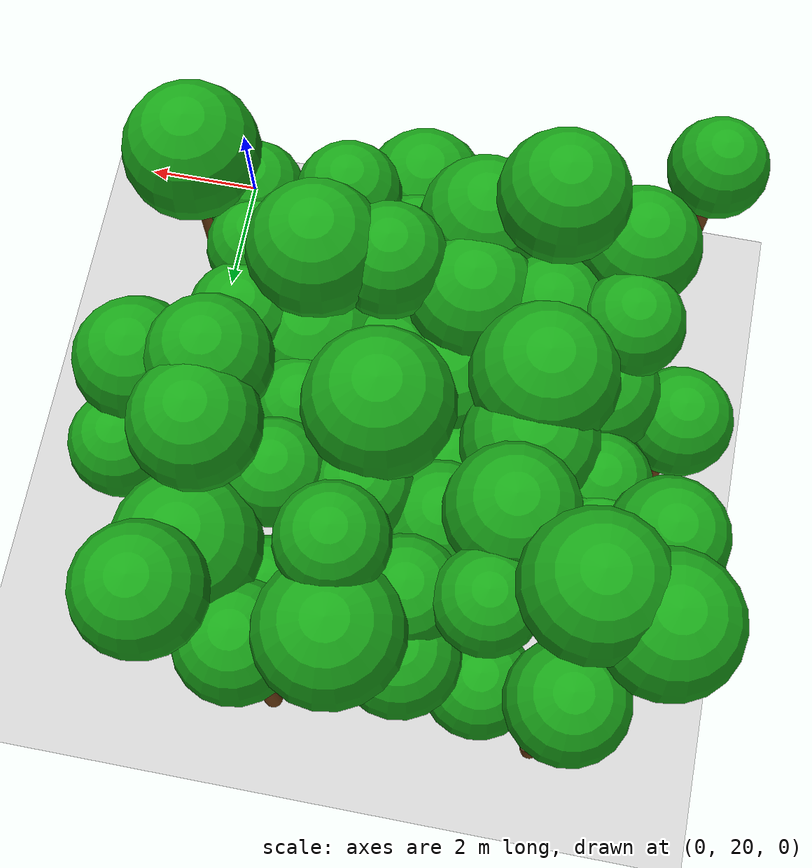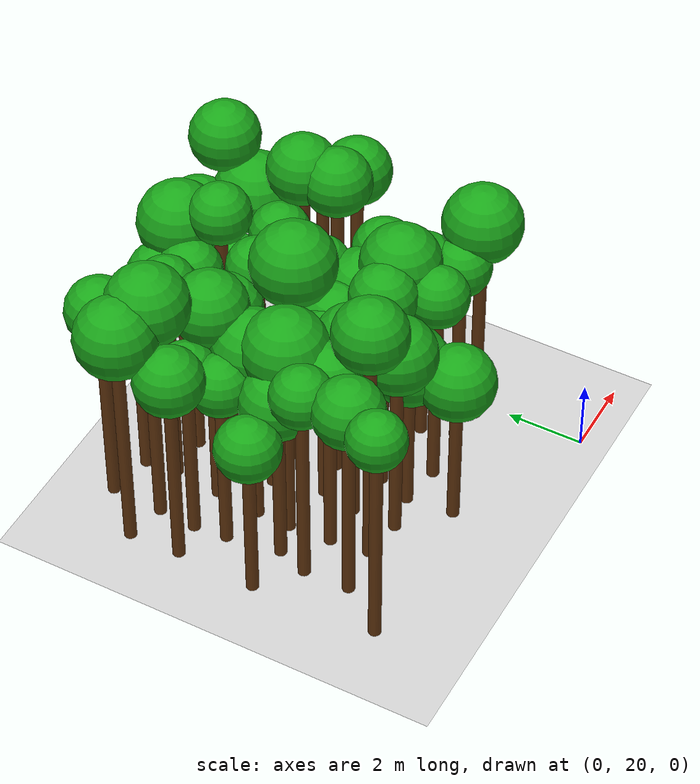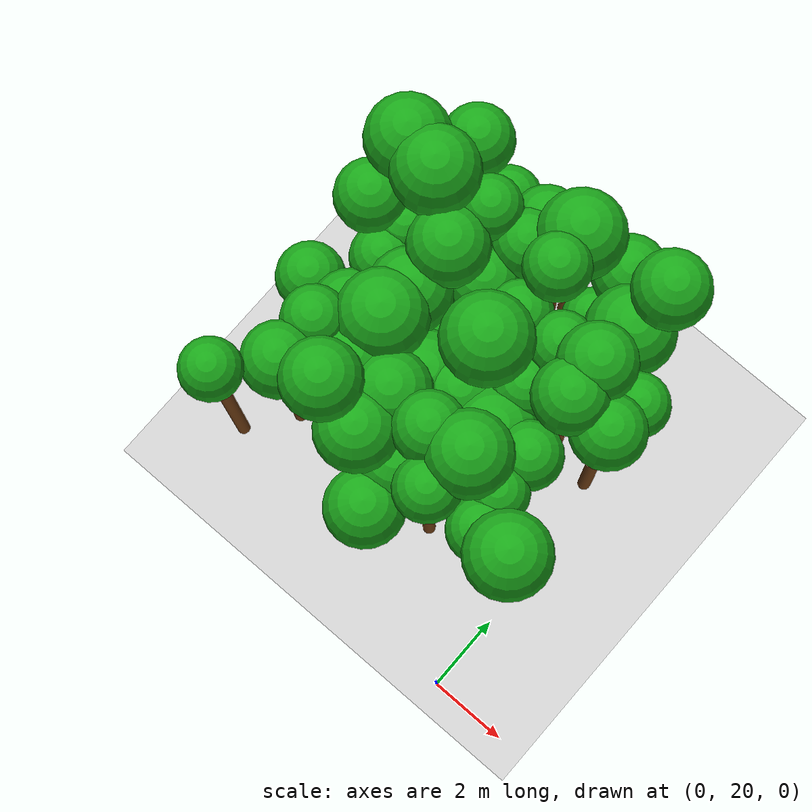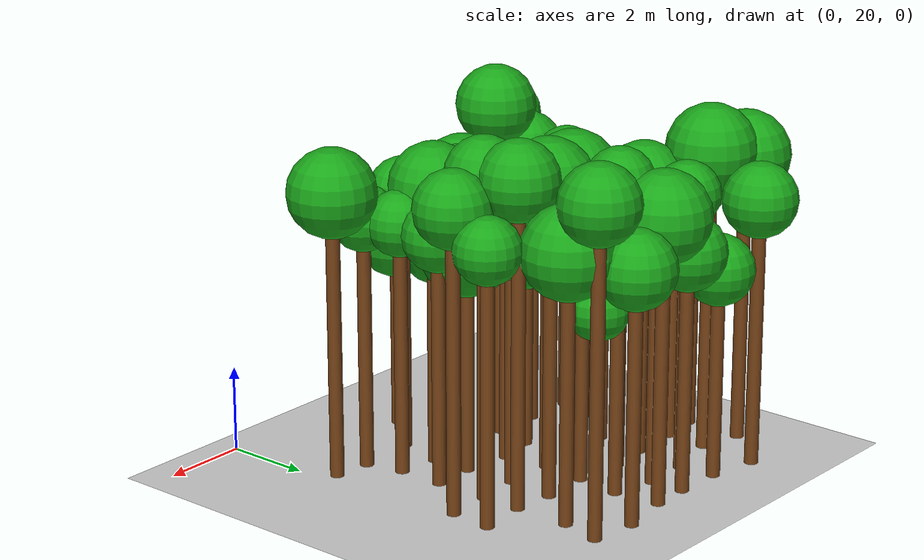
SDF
<sdf version="1.6">
 <world name="forest_world">
  <include><uri>model://sun</uri></include>
  <include><uri>model://ground_plane</uri></include>
  <model name="tree_1147_trunk">
   <static>true</static>
   <pose>-7.85 21.68 3.12 0 0 0</pose>
   <link name="link">
    <collision name="collision">
     <geometry><cylinder><radius>0.16</radius><length>6.24</length></cylinder></geometry>
    </collision>
    <visual name="visual">
     <geometry><cylinder><radius>0.16</radius><length>6.24</length></cylinder></geometry>
     <material><ambient>0.35 0.20 0.05 1</ambient><diffuse>0.45 0.25 0.08 1</diffuse></material>
    </visual>
   </link>
  </model>
  <model name="tree_1147_leaf">
   <static>true</static>
   <pose>-7.85 21.68 6.68 0 0 0</pose>
   <link name="link">
    <collision name="collision"><geometry><sphere><radius>0.73</radius></sphere></geometry></collision>
    <visual name="visual">
     <geometry><sphere><radius>0.73</radius></sphere></geometry>
     <material><ambient>0.05 0.45 0.05 1</ambient><diffuse>0.10 0.65 0.10 1</diffuse></material>
    </visual>
   </link>
  </model>
  <model name="tree_1150_trunk">
   <static>true</static>
   <pose>-8.02 24.93 2.19 0 0 0</pose>
   <link name="link">
    <collision name="collision">
     <geometry><cylinder><radius>0.16</radius><length>4.38</length></cylinder></geometry>
    </collision>
    <visual name="visual">
     <geometry><cylinder><radius>0.16</radius><length>4.38</length></cylinder></geometry>
     <material><ambient>0.35 0.20 0.05 1</ambient><diffuse>0.45 0.25 0.08 1</diffuse></material>
    </visual>
   </link>
  </model>
  <model name="tree_1150_leaf">
   <static>true</static>
   <pose>-8.02 24.93 4.88 0 0 0</pose>
   <link name="link">
    <collision name="collision"><geometry><sphere><radius>0.82</radius></sphere></geometry></collision>
    <visual name="visual">
     <geometry><sphere><radius>0.82</radius></sphere></geometry>
     <material><ambient>0.05 0.45 0.05 1</ambient><diffuse>0.10 0.65 0.10 1</diffuse></material>
    </visual>
   </link>
  </model>
  <model name="tree_1152_trunk">
   <static>true</static>
   <pose>-7.96 27.03 2.75 0 0 0</pose>
   <link name="link">
    <collision name="collision">
     <geometry><cylinder><radius>0.16</radius><length>5.50</length></cylinder></geometry>
    </collision>
    <visual name="visual">
     <geometry><cylinder><radius>0.16</radius><length>5.50</length></cylinder></geometry>
     <material><ambient>0.35 0.20 0.05 1</ambient><diffuse>0.45 0.25 0.08 1</diffuse></material>
    </visual>
   </link>
  </model>
  <model name="tree_1152_leaf">
   <static>true</static>
   <pose>-7.96 27.03 6.02 0 0 0</pose>
   <link name="link">
    <collision name="collision"><geometry><sphere><radius>0.87</radius></sphere></geometry></collision>
    <visual name="visual">
     <geometry><sphere><radius>0.87</radius></sphere></geometry>
     <material><ambient>0.05 0.45 0.05 1</ambient><diffuse>0.10 0.65 0.10 1</diffuse></material>
    </visual>
   </link>
  </model>
  <model name="tree_1153_trunk">
   <static>true</static>
   <pose>-8.01 28.38 3.11 0 0 0</pose>
   <link name="link">
    <collision name="collision">
     <geometry><cylinder><radius>0.16</radius><length>6.23</length></cylinder></geometry>
    </collision>
    <visual name="visual">
     <geometry><cylinder><radius>0.16</radius><length>6.23</length></cylinder></geometry>
     <material><ambient>0.35 0.20 0.05 1</ambient><diffuse>0.45 0.25 0.08 1</diffuse></material>
    </visual>
   </link>
  </model>
  <model name="tree_1153_leaf">
   <static>true</static>
   <pose>-8.01 28.38 6.84 0 0 0</pose>
   <link name="link">
    <collision name="collision"><geometry><sphere><radius>1.02</radius></sphere></geometry></collision>
    <visual name="visual">
     <geometry><sphere><radius>1.02</radius></sphere></geometry>
     <material><ambient>0.05 0.45 0.05 1</ambient><diffuse>0.10 0.65 0.10 1</diffuse></material>
    </visual>
   </link>
  </model>
  <model name="tree_1203_trunk">
   <static>true</static>
   <pose>-6.98 22.86 2.83 0 0 0</pose>
   <link name="link">
    <collision name="collision">
     <geometry><cylinder><radius>0.16</radius><length>5.65</length></cylinder></geometry>
    </collision>
    <visual name="visual">
     <geometry><cylinder><radius>0.16</radius><length>5.65</length></cylinder></geometry>
     <material><ambient>0.35 0.20 0.05 1</ambient><diffuse>0.45 0.25 0.08 1</diffuse></material>
    </visual>
   </link>
  </model>
  <model name="tree_1203_leaf">
   <static>true</static>
   <pose>-6.98 22.86 6.18 0 0 0</pose>
   <link name="link">
    <collision name="collision"><geometry><sphere><radius>0.89</radius></sphere></geometry></collision>
    <visual name="visual">
     <geometry><sphere><radius>0.89</radius></sphere></geometry>
     <material><ambient>0.05 0.45 0.05 1</ambient><diffuse>0.10 0.65 0.10 1</diffuse></material>
    </visual>
   </link>
  </model>
  <model name="tree_1204_trunk">
   <static>true</static>
   <pose>-7.02 24.06 2.83 0 0 0</pose>
   <link name="link">
    <collision name="collision">
     <geometry><cylinder><radius>0.16</radius><length>5.67</length></cylinder></geometry>
    </collision>
    <visual name="visual">
     <geometry><cylinder><radius>0.16</radius><length>5.67</length></cylinder></geometry>
     <material><ambient>0.35 0.20 0.05 1</ambient><diffuse>0.45 0.25 0.08 1</diffuse></material>
    </visual>
   </link>
  </model>
  <model name="tree_1204_leaf">
   <static>true</static>
   <pose>-7.02 24.06 6.13 0 0 0</pose>
   <link name="link">
    <collision name="collision"><geometry><sphere><radius>0.78</radius></sphere></geometry></collision>
    <visual name="visual">
     <geometry><sphere><radius>0.78</radius></sphere></geometry>
     <material><ambient>0.05 0.45 0.05 1</ambient><diffuse>0.10 0.65 0.10 1</diffuse></material>
    </visual>
   </link>
  </model>
  <model name="tree_1205_trunk">
   <static>true</static>
   <pose>-6.74 24.87 2.36 0 0 0</pose>
   <link name="link">
    <collision name="collision">
     <geometry><cylinder><radius>0.16</radius><length>4.73</length></cylinder></geometry>
    </collision>
    <visual name="visual">
     <geometry><cylinder><radius>0.16</radius><length>4.73</length></cylinder></geometry>
     <material><ambient>0.35 0.20 0.05 1</ambient><diffuse>0.45 0.25 0.08 1</diffuse></material>
    </visual>
   </link>
  </model>
  <model name="tree_1205_leaf">
   <static>true</static>
   <pose>-6.74 24.87 5.29 0 0 0</pose>
   <link name="link">
    <collision name="collision"><geometry><sphere><radius>0.94</radius></sphere></geometry></collision>
    <visual name="visual">
     <geometry><sphere><radius>0.94</radius></sphere></geometry>
     <material><ambient>0.05 0.45 0.05 1</ambient><diffuse>0.10 0.65 0.10 1</diffuse></material>
    </visual>
   </link>
  </model>
  <model name="tree_1206_trunk">
   <static>true</static>
   <pose>-6.97 26.26 2.45 0 0 0</pose>
   <link name="link">
    <collision name="collision">
     <geometry><cylinder><radius>0.16</radius><length>4.90</length></cylinder></geometry>
    </collision>
    <visual name="visual">
     <geometry><cylinder><radius>0.16</radius><length>4.90</length></cylinder></geometry>
     <material><ambient>0.35 0.20 0.05 1</ambient><diffuse>0.45 0.25 0.08 1</diffuse></material>
    </visual>
   </link>
  </model>
  <model name="tree_1206_leaf">
   <static>true</static>
   <pose>-6.97 26.26 5.37 0 0 0</pose>
   <link name="link">
    <collision name="collision"><geometry><sphere><radius>0.78</radius></sphere></geometry></collision>
    <visual name="visual">
     <geometry><sphere><radius>0.78</radius></sphere></geometry>
     <material><ambient>0.05 0.45 0.05 1</ambient><diffuse>0.10 0.65 0.10 1</diffuse></material>
    </visual>
   </link>
  </model>
  <model name="tree_1207_trunk">
   <static>true</static>
   <pose>-7.05 27.13 2.48 0 0 0</pose>
   <link name="link">
    <collision name="collision">
     <geometry><cylinder><radius>0.16</radius><length>4.97</length></cylinder></geometry>
    </collision>
    <visual name="visual">
     <geometry><cylinder><radius>0.16</radius><length>4.97</length></cylinder></geometry>
     <material><ambient>0.35 0.20 0.05 1</ambient><diffuse>0.45 0.25 0.08 1</diffuse></material>
    </visual>
   </link>
  </model>
  <model name="tree_1207_leaf">
   <static>true</static>
   <pose>-7.05 27.13 5.44 0 0 0</pose>
   <link name="link">
    <collision name="collision"><geometry><sphere><radius>0.78</radius></sphere></geometry></collision>
    <visual name="visual">
     <geometry><sphere><radius>0.78</radius></sphere></geometry>
     <material><ambient>0.05 0.45 0.05 1</ambient><diffuse>0.10 0.65 0.10 1</diffuse></material>
    </visual>
   </link>
  </model>
  <model name="tree_1208_trunk">
   <static>true</static>
   <pose>-7.00 28.13 3.26 0 0 0</pose>
   <link name="link">
    <collision name="collision">
     <geometry><cylinder><radius>0.16</radius><length>6.51</length></cylinder></geometry>
    </collision>
    <visual name="visual">
     <geometry><cylinder><radius>0.16</radius><length>6.51</length></cylinder></geometry>
     <material><ambient>0.35 0.20 0.05 1</ambient><diffuse>0.45 0.25 0.08 1</diffuse></material>
    </visual>
   </link>
  </model>
  <model name="tree_1208_leaf">
   <static>true</static>
   <pose>-7.00 28.13 7.14 0 0 0</pose>
   <link name="link">
    <collision name="collision"><geometry><sphere><radius>1.04</radius></sphere></geometry></collision>
    <visual name="visual">
     <geometry><sphere><radius>1.04</radius></sphere></geometry>
     <material><ambient>0.05 0.45 0.05 1</ambient><diffuse>0.10 0.65 0.10 1</diffuse></material>
    </visual>
   </link>
  </model>
  <model name="tree_1209_trunk">
   <static>true</static>
   <pose>-6.94 29.51 2.87 0 0 0</pose>
   <link name="link">
    <collision name="collision">
     <geometry><cylinder><radius>0.16</radius><length>5.74</length></cylinder></geometry>
    </collision>
    <visual name="visual">
     <geometry><cylinder><radius>0.16</radius><length>5.74</length></cylinder></geometry>
     <material><ambient>0.35 0.20 0.05 1</ambient><diffuse>0.45 0.25 0.08 1</diffuse></material>
    </visual>
   </link>
  </model>
  <model name="tree_1209_leaf">
   <static>true</static>
   <pose>-6.94 29.51 6.25 0 0 0</pose>
   <link name="link">
    <collision name="collision"><geometry><sphere><radius>0.86</radius></sphere></geometry></collision>
    <visual name="visual">
     <geometry><sphere><radius>0.86</radius></sphere></geometry>
     <material><ambient>0.05 0.45 0.05 1</ambient><diffuse>0.10 0.65 0.10 1</diffuse></material>
    </visual>
   </link>
  </model>
  <model name="tree_1258_trunk">
   <static>true</static>
   <pose>-5.74 22.97 3.48 0 0 0</pose>
   <link name="link">
    <collision name="collision">
     <geometry><cylinder><radius>0.16</radius><length>6.96</length></cylinder></geometry>
    </collision>
    <visual name="visual">
     <geometry><cylinder><radius>0.16</radius><length>6.96</length></cylinder></geometry>
     <material><ambient>0.35 0.20 0.05 1</ambient><diffuse>0.45 0.25 0.08 1</diffuse></material>
    </visual>
   </link>
  </model>
  <model name="tree_1258_leaf">
   <static>true</static>
   <pose>-5.74 22.97 7.52 0 0 0</pose>
   <link name="link">
    <collision name="collision"><geometry><sphere><radius>0.93</radius></sphere></geometry></collision>
    <visual name="visual">
     <geometry><sphere><radius>0.93</radius></sphere></geometry>
     <material><ambient>0.05 0.45 0.05 1</ambient><diffuse>0.10 0.65 0.10 1</diffuse></material>
    </visual>
   </link>
  </model>
  <model name="tree_1259_trunk">
   <static>true</static>
   <pose>-5.85 23.98 2.59 0 0 0</pose>
   <link name="link">
    <collision name="collision">
     <geometry><cylinder><radius>0.16</radius><length>5.19</length></cylinder></geometry>
    </collision>
    <visual name="visual">
     <geometry><cylinder><radius>0.16</radius><length>5.19</length></cylinder></geometry>
     <material><ambient>0.35 0.20 0.05 1</ambient><diffuse>0.45 0.25 0.08 1</diffuse></material>
    </visual>
   </link>
  </model>
  <model name="tree_1259_leaf">
   <static>true</static>
   <pose>-5.85 23.98 5.74 0 0 0</pose>
   <link name="link">
    <collision name="collision"><geometry><sphere><radius>0.92</radius></sphere></geometry></collision>
    <visual name="visual">
     <geometry><sphere><radius>0.92</radius></sphere></geometry>
     <material><ambient>0.05 0.45 0.05 1</ambient><diffuse>0.10 0.65 0.10 1</diffuse></material>
    </visual>
   </link>
  </model>
  <model name="tree_1260_trunk">
   <static>true</static>
   <pose>-5.93 25.09 2.76 0 0 0</pose>
   <link name="link">
    <collision name="collision">
     <geometry><cylinder><radius>0.16</radius><length>5.53</length></cylinder></geometry>
    </collision>
    <visual name="visual">
     <geometry><cylinder><radius>0.16</radius><length>5.53</length></cylinder></geometry>
     <material><ambient>0.35 0.20 0.05 1</ambient><diffuse>0.45 0.25 0.08 1</diffuse></material>
    </visual>
   </link>
  </model>
  <model name="tree_1260_leaf">
   <static>true</static>
   <pose>-5.93 25.09 6.18 0 0 0</pose>
   <link name="link">
    <collision name="collision"><geometry><sphere><radius>1.08</radius></sphere></geometry></collision>
    <visual name="visual">
     <geometry><sphere><radius>1.08</radius></sphere></geometry>
     <material><ambient>0.05 0.45 0.05 1</ambient><diffuse>0.10 0.65 0.10 1</diffuse></material>
    </visual>
   </link>
  </model>
  <model name="tree_1261_trunk">
   <static>true</static>
   <pose>-5.91 25.99 2.58 0 0 0</pose>
   <link name="link">
    <collision name="collision">
     <geometry><cylinder><radius>0.16</radius><length>5.17</length></cylinder></geometry>
    </collision>
    <visual name="visual">
     <geometry><cylinder><radius>0.16</radius><length>5.17</length></cylinder></geometry>
     <material><ambient>0.35 0.20 0.05 1</ambient><diffuse>0.45 0.25 0.08 1</diffuse></material>
    </visual>
   </link>
  </model>
  <model name="tree_1261_leaf">
   <static>true</static>
   <pose>-5.91 25.99 5.77 0 0 0</pose>
   <link name="link">
    <collision name="collision"><geometry><sphere><radius>1.01</radius></sphere></geometry></collision>
    <visual name="visual">
     <geometry><sphere><radius>1.01</radius></sphere></geometry>
     <material><ambient>0.05 0.45 0.05 1</ambient><diffuse>0.10 0.65 0.10 1</diffuse></material>
    </visual>
   </link>
  </model>
  <model name="tree_1262_trunk">
   <static>true</static>
   <pose>-5.81 27.18 2.94 0 0 0</pose>
   <link name="link">
    <collision name="collision">
     <geometry><cylinder><radius>0.16</radius><length>5.87</length></cylinder></geometry>
    </collision>
    <visual name="visual">
     <geometry><cylinder><radius>0.16</radius><length>5.87</length></cylinder></geometry>
     <material><ambient>0.35 0.20 0.05 1</ambient><diffuse>0.45 0.25 0.08 1</diffuse></material>
    </visual>
   </link>
  </model>
  <model name="tree_1262_leaf">
   <static>true</static>
   <pose>-5.81 27.18 6.45 0 0 0</pose>
   <link name="link">
    <collision name="collision"><geometry><sphere><radius>0.96</radius></sphere></geometry></collision>
    <visual name="visual">
     <geometry><sphere><radius>0.96</radius></sphere></geometry>
     <material><ambient>0.05 0.45 0.05 1</ambient><diffuse>0.10 0.65 0.10 1</diffuse></material>
    </visual>
   </link>
  </model>
  <model name="tree_1263_trunk">
   <static>true</static>
   <pose>-5.68 28.44 3.00 0 0 0</pose>
   <link name="link">
    <collision name="collision">
     <geometry><cylinder><radius>0.16</radius><length>6.01</length></cylinder></geometry>
    </collision>
    <visual name="visual">
     <geometry><cylinder><radius>0.16</radius><length>6.01</length></cylinder></geometry>
     <material><ambient>0.35 0.20 0.05 1</ambient><diffuse>0.45 0.25 0.08 1</diffuse></material>
    </visual>
   </link>
  </model>
  <model name="tree_1263_leaf">
   <static>true</static>
   <pose>-5.68 28.44 6.47 0 0 0</pose>
   <link name="link">
    <collision name="collision"><geometry><sphere><radius>0.76</radius></sphere></geometry></collision>
    <visual name="visual">
     <geometry><sphere><radius>0.76</radius></sphere></geometry>
     <material><ambient>0.05 0.45 0.05 1</ambient><diffuse>0.10 0.65 0.10 1</diffuse></material>
    </visual>
   </link>
  </model>
  <model name="tree_1264_trunk">
   <static>true</static>
   <pose>-5.78 29.27 2.20 0 0 0</pose>
   <link name="link">
    <collision name="collision">
     <geometry><cylinder><radius>0.16</radius><length>4.40</length></cylinder></geometry>
    </collision>
    <visual name="visual">
     <geometry><cylinder><radius>0.16</radius><length>4.40</length></cylinder></geometry>
     <material><ambient>0.35 0.20 0.05 1</ambient><diffuse>0.45 0.25 0.08 1</diffuse></material>
    </visual>
   </link>
  </model>
  <model name="tree_1264_leaf">
   <static>true</static>
   <pose>-5.78 29.27 4.88 0 0 0</pose>
   <link name="link">
    <collision name="collision"><geometry><sphere><radius>0.81</radius></sphere></geometry></collision>
    <visual name="visual">
     <geometry><sphere><radius>0.81</radius></sphere></geometry>
     <material><ambient>0.05 0.45 0.05 1</ambient><diffuse>0.10 0.65 0.10 1</diffuse></material>
    </visual>
   </link>
  </model>
  <model name="tree_1313_trunk">
   <static>true</static>
   <pose>-4.70 22.81 2.72 0 0 0</pose>
   <link name="link">
    <collision name="collision">
     <geometry><cylinder><radius>0.16</radius><length>5.43</length></cylinder></geometry>
    </collision>
    <visual name="visual">
     <geometry><cylinder><radius>0.16</radius><length>5.43</length></cylinder></geometry>
     <material><ambient>0.35 0.20 0.05 1</ambient><diffuse>0.45 0.25 0.08 1</diffuse></material>
    </visual>
   </link>
  </model>
  <model name="tree_1313_leaf">
   <static>true</static>
   <pose>-4.70 22.81 6.02 0 0 0</pose>
   <link name="link">
    <collision name="collision"><geometry><sphere><radius>0.98</radius></sphere></geometry></collision>
    <visual name="visual">
     <geometry><sphere><radius>0.98</radius></sphere></geometry>
     <material><ambient>0.05 0.45 0.05 1</ambient><diffuse>0.10 0.65 0.10 1</diffuse></material>
    </visual>
   </link>
  </model>
  <model name="tree_1314_trunk">
   <static>true</static>
   <pose>-4.72 23.96 2.66 0 0 0</pose>
   <link name="link">
    <collision name="collision">
     <geometry><cylinder><radius>0.16</radius><length>5.32</length></cylinder></geometry>
    </collision>
    <visual name="visual">
     <geometry><cylinder><radius>0.16</radius><length>5.32</length></cylinder></geometry>
     <material><ambient>0.35 0.20 0.05 1</ambient><diffuse>0.45 0.25 0.08 1</diffuse></material>
    </visual>
   </link>
  </model>
  <model name="tree_1314_leaf">
   <static>true</static>
   <pose>-4.72 23.96 5.90 0 0 0</pose>
   <link name="link">
    <collision name="collision"><geometry><sphere><radius>0.97</radius></sphere></geometry></collision>
    <visual name="visual">
     <geometry><sphere><radius>0.97</radius></sphere></geometry>
     <material><ambient>0.05 0.45 0.05 1</ambient><diffuse>0.10 0.65 0.10 1</diffuse></material>
    </visual>
   </link>
  </model>
  <model name="tree_1315_trunk">
   <static>true</static>
   <pose>-4.53 24.87 2.14 0 0 0</pose>
   <link name="link">
    <collision name="collision">
     <geometry><cylinder><radius>0.16</radius><length>4.27</length></cylinder></geometry>
    </collision>
    <visual name="visual">
     <geometry><cylinder><radius>0.16</radius><length>4.27</length></cylinder></geometry>
     <material><ambient>0.35 0.20 0.05 1</ambient><diffuse>0.45 0.25 0.08 1</diffuse></material>
    </visual>
   </link>
  </model>
  <model name="tree_1315_leaf">
   <static>true</static>
   <pose>-4.53 24.87 4.93 0 0 0</pose>
   <link name="link">
    <collision name="collision"><geometry><sphere><radius>1.09</radius></sphere></geometry></collision>
    <visual name="visual">
     <geometry><sphere><radius>1.09</radius></sphere></geometry>
     <material><ambient>0.05 0.45 0.05 1</ambient><diffuse>0.10 0.65 0.10 1</diffuse></material>
    </visual>
   </link>
  </model>
  <model name="tree_1316_trunk">
   <static>true</static>
   <pose>-4.83 26.16 2.05 0 0 0</pose>
   <link name="link">
    <collision name="collision">
     <geometry><cylinder><radius>0.16</radius><length>4.10</length></cylinder></geometry>
    </collision>
    <visual name="visual">
     <geometry><cylinder><radius>0.16</radius><length>4.10</length></cylinder></geometry>
     <material><ambient>0.35 0.20 0.05 1</ambient><diffuse>0.45 0.25 0.08 1</diffuse></material>
    </visual>
   </link>
  </model>
  <model name="tree_1316_leaf">
   <static>true</static>
   <pose>-4.83 26.16 4.60 0 0 0</pose>
   <link name="link">
    <collision name="collision"><geometry><sphere><radius>0.85</radius></sphere></geometry></collision>
    <visual name="visual">
     <geometry><sphere><radius>0.85</radius></sphere></geometry>
     <material><ambient>0.05 0.45 0.05 1</ambient><diffuse>0.10 0.65 0.10 1</diffuse></material>
    </visual>
   </link>
  </model>
  <model name="tree_1317_trunk">
   <static>true</static>
   <pose>-4.86 27.27 2.54 0 0 0</pose>
   <link name="link">
    <collision name="collision">
     <geometry><cylinder><radius>0.16</radius><length>5.07</length></cylinder></geometry>
    </collision>
    <visual name="visual">
     <geometry><cylinder><radius>0.16</radius><length>5.07</length></cylinder></geometry>
     <material><ambient>0.35 0.20 0.05 1</ambient><diffuse>0.45 0.25 0.08 1</diffuse></material>
    </visual>
   </link>
  </model>
  <model name="tree_1317_leaf">
   <static>true</static>
   <pose>-4.86 27.27 5.59 0 0 0</pose>
   <link name="link">
    <collision name="collision"><geometry><sphere><radius>0.87</radius></sphere></geometry></collision>
    <visual name="visual">
     <geometry><sphere><radius>0.87</radius></sphere></geometry>
     <material><ambient>0.05 0.45 0.05 1</ambient><diffuse>0.10 0.65 0.10 1</diffuse></material>
    </visual>
   </link>
  </model>
  <model name="tree_1318_trunk">
   <static>true</static>
   <pose>-4.59 28.45 2.78 0 0 0</pose>
   <link name="link">
    <collision name="collision">
     <geometry><cylinder><radius>0.16</radius><length>5.56</length></cylinder></geometry>
    </collision>
    <visual name="visual">
     <geometry><cylinder><radius>0.16</radius><length>5.56</length></cylinder></geometry>
     <material><ambient>0.35 0.20 0.05 1</ambient><diffuse>0.45 0.25 0.08 1</diffuse></material>
    </visual>
   </link>
  </model>
  <model name="tree_1318_leaf">
   <static>true</static>
   <pose>-4.59 28.45 6.04 0 0 0</pose>
   <link name="link">
    <collision name="collision"><geometry><sphere><radius>0.81</radius></sphere></geometry></collision>
    <visual name="visual">
     <geometry><sphere><radius>0.81</radius></sphere></geometry>
     <material><ambient>0.05 0.45 0.05 1</ambient><diffuse>0.10 0.65 0.10 1</diffuse></material>
    </visual>
   </link>
  </model>
  <model name="tree_1319_trunk">
   <static>true</static>
   <pose>-4.65 29.23 2.52 0 0 0</pose>
   <link name="link">
    <collision name="collision">
     <geometry><cylinder><radius>0.16</radius><length>5.05</length></cylinder></geometry>
    </collision>
    <visual name="visual">
     <geometry><cylinder><radius>0.16</radius><length>5.05</length></cylinder></geometry>
     <material><ambient>0.35 0.20 0.05 1</ambient><diffuse>0.45 0.25 0.08 1</diffuse></material>
    </visual>
   </link>
  </model>
  <model name="tree_1319_leaf">
   <static>true</static>
   <pose>-4.65 29.23 5.57 0 0 0</pose>
   <link name="link">
    <collision name="collision"><geometry><sphere><radius>0.87</radius></sphere></geometry></collision>
    <visual name="visual">
     <geometry><sphere><radius>0.87</radius></sphere></geometry>
     <material><ambient>0.05 0.45 0.05 1</ambient><diffuse>0.10 0.65 0.10 1</diffuse></material>
    </visual>
   </link>
  </model>
  <model name="tree_1367_trunk">
   <static>true</static>
   <pose>-3.62 21.76 2.03 0 0 0</pose>
   <link name="link">
    <collision name="collision">
     <geometry><cylinder><radius>0.16</radius><length>4.06</length></cylinder></geometry>
    </collision>
    <visual name="visual">
     <geometry><cylinder><radius>0.16</radius><length>4.06</length></cylinder></geometry>
     <material><ambient>0.35 0.20 0.05 1</ambient><diffuse>0.45 0.25 0.08 1</diffuse></material>
    </visual>
   </link>
  </model>
  <model name="tree_1367_leaf">
   <static>true</static>
   <pose>-3.62 21.76 4.64 0 0 0</pose>
   <link name="link">
    <collision name="collision"><geometry><sphere><radius>0.96</radius></sphere></geometry></collision>
    <visual name="visual">
     <geometry><sphere><radius>0.96</radius></sphere></geometry>
     <material><ambient>0.05 0.45 0.05 1</ambient><diffuse>0.10 0.65 0.10 1</diffuse></material>
    </visual>
   </link>
  </model>
  <model name="tree_1368_trunk">
   <static>true</static>
   <pose>-3.75 22.98 2.06 0 0 0</pose>
   <link name="link">
    <collision name="collision">
     <geometry><cylinder><radius>0.16</radius><length>4.13</length></cylinder></geometry>
    </collision>
    <visual name="visual">
     <geometry><cylinder><radius>0.16</radius><length>4.13</length></cylinder></geometry>
     <material><ambient>0.35 0.20 0.05 1</ambient><diffuse>0.45 0.25 0.08 1</diffuse></material>
    </visual>
   </link>
  </model>
  <model name="tree_1368_leaf">
   <static>true</static>
   <pose>-3.75 22.98 4.74 0 0 0</pose>
   <link name="link">
    <collision name="collision"><geometry><sphere><radius>1.02</radius></sphere></geometry></collision>
    <visual name="visual">
     <geometry><sphere><radius>1.02</radius></sphere></geometry>
     <material><ambient>0.05 0.45 0.05 1</ambient><diffuse>0.10 0.65 0.10 1</diffuse></material>
    </visual>
   </link>
  </model>
  <model name="tree_1369_trunk">
   <static>true</static>
   <pose>-3.48 23.83 2.93 0 0 0</pose>
   <link name="link">
    <collision name="collision">
     <geometry><cylinder><radius>0.16</radius><length>5.86</length></cylinder></geometry>
    </collision>
    <visual name="visual">
     <geometry><cylinder><radius>0.16</radius><length>5.86</length></cylinder></geometry>
     <material><ambient>0.35 0.20 0.05 1</ambient><diffuse>0.45 0.25 0.08 1</diffuse></material>
    </visual>
   </link>
  </model>
  <model name="tree_1369_leaf">
   <static>true</static>
   <pose>-3.48 23.83 6.37 0 0 0</pose>
   <link name="link">
    <collision name="collision"><geometry><sphere><radius>0.85</radius></sphere></geometry></collision>
    <visual name="visual">
     <geometry><sphere><radius>0.85</radius></sphere></geometry>
     <material><ambient>0.05 0.45 0.05 1</ambient><diffuse>0.10 0.65 0.10 1</diffuse></material>
    </visual>
   </link>
  </model>
  <model name="tree_1370_trunk">
   <static>true</static>
   <pose>-3.62 25.04 2.33 0 0 0</pose>
   <link name="link">
    <collision name="collision">
     <geometry><cylinder><radius>0.16</radius><length>4.67</length></cylinder></geometry>
    </collision>
    <visual name="visual">
     <geometry><cylinder><radius>0.16</radius><length>4.67</length></cylinder></geometry>
     <material><ambient>0.35 0.20 0.05 1</ambient><diffuse>0.45 0.25 0.08 1</diffuse></material>
    </visual>
   </link>
  </model>
  <model name="tree_1370_leaf">
   <static>true</static>
   <pose>-3.62 25.04 5.22 0 0 0</pose>
   <link name="link">
    <collision name="collision"><geometry><sphere><radius>0.92</radius></sphere></geometry></collision>
    <visual name="visual">
     <geometry><sphere><radius>0.92</radius></sphere></geometry>
     <material><ambient>0.05 0.45 0.05 1</ambient><diffuse>0.10 0.65 0.10 1</diffuse></material>
    </visual>
   </link>
  </model>
  <model name="tree_1371_trunk">
   <static>true</static>
   <pose>-3.77 26.09 3.01 0 0 0</pose>
   <link name="link">
    <collision name="collision">
     <geometry><cylinder><radius>0.16</radius><length>6.02</length></cylinder></geometry>
    </collision>
    <visual name="visual">
     <geometry><cylinder><radius>0.16</radius><length>6.02</length></cylinder></geometry>
     <material><ambient>0.35 0.20 0.05 1</ambient><diffuse>0.45 0.25 0.08 1</diffuse></material>
    </visual>
   </link>
  </model>
  <model name="tree_1371_leaf">
   <static>true</static>
   <pose>-3.77 26.09 6.67 0 0 0</pose>
   <link name="link">
    <collision name="collision"><geometry><sphere><radius>1.08</radius></sphere></geometry></collision>
    <visual name="visual">
     <geometry><sphere><radius>1.08</radius></sphere></geometry>
     <material><ambient>0.05 0.45 0.05 1</ambient><diffuse>0.10 0.65 0.10 1</diffuse></material>
    </visual>
   </link>
  </model>
  <model name="tree_1372_trunk">
   <static>true</static>
   <pose>-3.69 27.13 2.76 0 0 0</pose>
   <link name="link">
    <collision name="collision">
     <geometry><cylinder><radius>0.16</radius><length>5.52</length></cylinder></geometry>
    </collision>
    <visual name="visual">
     <geometry><cylinder><radius>0.16</radius><length>5.52</length></cylinder></geometry>
     <material><ambient>0.35 0.20 0.05 1</ambient><diffuse>0.45 0.25 0.08 1</diffuse></material>
    </visual>
   </link>
  </model>
  <model name="tree_1372_leaf">
   <static>true</static>
   <pose>-3.69 27.13 5.99 0 0 0</pose>
   <link name="link">
    <collision name="collision"><geometry><sphere><radius>0.78</radius></sphere></geometry></collision>
    <visual name="visual">
     <geometry><sphere><radius>0.78</radius></sphere></geometry>
     <material><ambient>0.05 0.45 0.05 1</ambient><diffuse>0.10 0.65 0.10 1</diffuse></material>
    </visual>
   </link>
  </model>
  <model name="tree_1373_trunk">
   <static>true</static>
   <pose>-3.58 28.18 3.36 0 0 0</pose>
   <link name="link">
    <collision name="collision">
     <geometry><cylinder><radius>0.16</radius><length>6.72</length></cylinder></geometry>
    </collision>
    <visual name="visual">
     <geometry><cylinder><radius>0.16</radius><length>6.72</length></cylinder></geometry>
     <material><ambient>0.35 0.20 0.05 1</ambient><diffuse>0.45 0.25 0.08 1</diffuse></material>
    </visual>
   </link>
  </model>
  <model name="tree_1373_leaf">
   <static>true</static>
   <pose>-3.58 28.18 7.19 0 0 0</pose>
   <link name="link">
    <collision name="collision"><geometry><sphere><radius>0.78</radius></sphere></geometry></collision>
    <visual name="visual">
     <geometry><sphere><radius>0.78</radius></sphere></geometry>
     <material><ambient>0.05 0.45 0.05 1</ambient><diffuse>0.10 0.65 0.10 1</diffuse></material>
    </visual>
   </link>
  </model>
  <model name="tree_1374_trunk">
   <static>true</static>
   <pose>-3.73 29.25 2.99 0 0 0</pose>
   <link name="link">
    <collision name="collision">
     <geometry><cylinder><radius>0.16</radius><length>5.98</length></cylinder></geometry>
    </collision>
    <visual name="visual">
     <geometry><cylinder><radius>0.16</radius><length>5.98</length></cylinder></geometry>
     <material><ambient>0.35 0.20 0.05 1</ambient><diffuse>0.45 0.25 0.08 1</diffuse></material>
    </visual>
   </link>
  </model>
  <model name="tree_1374_leaf">
   <static>true</static>
   <pose>-3.73 29.25 6.60 0 0 0</pose>
   <link name="link">
    <collision name="collision"><geometry><sphere><radius>1.04</radius></sphere></geometry></collision>
    <visual name="visual">
     <geometry><sphere><radius>1.04</radius></sphere></geometry>
     <material><ambient>0.05 0.45 0.05 1</ambient><diffuse>0.10 0.65 0.10 1</diffuse></material>
    </visual>
   </link>
  </model>
  <model name="tree_1420_trunk">
   <static>true</static>
   <pose>-2.67 22.81 2.84 0 0 0</pose>
   <link name="link">
    <collision name="collision">
     <geometry><cylinder><radius>0.16</radius><length>5.69</length></cylinder></geometry>
    </collision>
    <visual name="visual">
     <geometry><cylinder><radius>0.16</radius><length>5.69</length></cylinder></geometry>
     <material><ambient>0.35 0.20 0.05 1</ambient><diffuse>0.45 0.25 0.08 1</diffuse></material>
    </visual>
   </link>
  </model>
  <model name="tree_1420_leaf">
   <static>true</static>
   <pose>-2.67 22.81 6.15 0 0 0</pose>
   <link name="link">
    <collision name="collision"><geometry><sphere><radius>0.78</radius></sphere></geometry></collision>
    <visual name="visual">
     <geometry><sphere><radius>0.78</radius></sphere></geometry>
     <material><ambient>0.05 0.45 0.05 1</ambient><diffuse>0.10 0.65 0.10 1</diffuse></material>
    </visual>
   </link>
  </model>
  <model name="tree_1421_trunk">
   <static>true</static>
   <pose>-2.43 23.93 2.96 0 0 0</pose>
   <link name="link">
    <collision name="collision">
     <geometry><cylinder><radius>0.16</radius><length>5.92</length></cylinder></geometry>
    </collision>
    <visual name="visual">
     <geometry><cylinder><radius>0.16</radius><length>5.92</length></cylinder></geometry>
     <material><ambient>0.35 0.20 0.05 1</ambient><diffuse>0.45 0.25 0.08 1</diffuse></material>
    </visual>
   </link>
  </model>
  <model name="tree_1421_leaf">
   <static>true</static>
   <pose>-2.43 23.93 6.53 0 0 0</pose>
   <link name="link">
    <collision name="collision"><geometry><sphere><radius>1.01</radius></sphere></geometry></collision>
    <visual name="visual">
     <geometry><sphere><radius>1.01</radius></sphere></geometry>
     <material><ambient>0.05 0.45 0.05 1</ambient><diffuse>0.10 0.65 0.10 1</diffuse></material>
    </visual>
   </link>
  </model>
  <model name="tree_1422_trunk">
   <static>true</static>
   <pose>-2.49 24.84 2.31 0 0 0</pose>
   <link name="link">
    <collision name="collision">
     <geometry><cylinder><radius>0.16</radius><length>4.63</length></cylinder></geometry>
    </collision>
    <visual name="visual">
     <geometry><cylinder><radius>0.16</radius><length>4.63</length></cylinder></geometry>
     <material><ambient>0.35 0.20 0.05 1</ambient><diffuse>0.45 0.25 0.08 1</diffuse></material>
    </visual>
   </link>
  </model>
  <model name="tree_1422_leaf">
   <static>true</static>
   <pose>-2.49 24.84 5.28 0 0 0</pose>
   <link name="link">
    <collision name="collision"><geometry><sphere><radius>1.09</radius></sphere></geometry></collision>
    <visual name="visual">
     <geometry><sphere><radius>1.09</radius></sphere></geometry>
     <material><ambient>0.05 0.45 0.05 1</ambient><diffuse>0.10 0.65 0.10 1</diffuse></material>
    </visual>
   </link>
  </model>
  <model name="tree_1423_trunk">
   <static>true</static>
   <pose>-2.61 26.02 2.56 0 0 0</pose>
   <link name="link">
    <collision name="collision">
     <geometry><cylinder><radius>0.16</radius><length>5.13</length></cylinder></geometry>
    </collision>
    <visual name="visual">
     <geometry><cylinder><radius>0.16</radius><length>5.13</length></cylinder></geometry>
     <material><ambient>0.35 0.20 0.05 1</ambient><diffuse>0.45 0.25 0.08 1</diffuse></material>
    </visual>
   </link>
  </model>
  <model name="tree_1423_leaf">
   <static>true</static>
   <pose>-2.61 26.02 5.61 0 0 0</pose>
   <link name="link">
    <collision name="collision"><geometry><sphere><radius>0.80</radius></sphere></geometry></collision>
    <visual name="visual">
     <geometry><sphere><radius>0.80</radius></sphere></geometry>
     <material><ambient>0.05 0.45 0.05 1</ambient><diffuse>0.10 0.65 0.10 1</diffuse></material>
    </visual>
   </link>
  </model>
  <model name="tree_1424_trunk">
   <static>true</static>
   <pose>-2.52 27.16 2.85 0 0 0</pose>
   <link name="link">
    <collision name="collision">
     <geometry><cylinder><radius>0.16</radius><length>5.70</length></cylinder></geometry>
    </collision>
    <visual name="visual">
     <geometry><cylinder><radius>0.16</radius><length>5.70</length></cylinder></geometry>
     <material><ambient>0.35 0.20 0.05 1</ambient><diffuse>0.45 0.25 0.08 1</diffuse></material>
    </visual>
   </link>
  </model>
  <model name="tree_1424_leaf">
   <static>true</static>
   <pose>-2.52 27.16 6.16 0 0 0</pose>
   <link name="link">
    <collision name="collision"><geometry><sphere><radius>0.77</radius></sphere></geometry></collision>
    <visual name="visual">
     <geometry><sphere><radius>0.77</radius></sphere></geometry>
     <material><ambient>0.05 0.45 0.05 1</ambient><diffuse>0.10 0.65 0.10 1</diffuse></material>
    </visual>
   </link>
  </model>
  <model name="tree_1425_trunk">
   <static>true</static>
   <pose>-2.56 28.42 2.13 0 0 0</pose>
   <link name="link">
    <collision name="collision">
     <geometry><cylinder><radius>0.16</radius><length>4.26</length></cylinder></geometry>
    </collision>
    <visual name="visual">
     <geometry><cylinder><radius>0.16</radius><length>4.26</length></cylinder></geometry>
     <material><ambient>0.35 0.20 0.05 1</ambient><diffuse>0.45 0.25 0.08 1</diffuse></material>
    </visual>
   </link>
  </model>
  <model name="tree_1425_leaf">
   <static>true</static>
   <pose>-2.56 28.42 4.68 0 0 0</pose>
   <link name="link">
    <collision name="collision"><geometry><sphere><radius>0.71</radius></sphere></geometry></collision>
    <visual name="visual">
     <geometry><sphere><radius>0.71</radius></sphere></geometry>
     <material><ambient>0.05 0.45 0.05 1</ambient><diffuse>0.10 0.65 0.10 1</diffuse></material>
    </visual>
   </link>
  </model>
  <model name="tree_1426_trunk">
   <static>true</static>
   <pose>-2.46 29.48 2.64 0 0 0</pose>
   <link name="link">
    <collision name="collision">
     <geometry><cylinder><radius>0.16</radius><length>5.28</length></cylinder></geometry>
    </collision>
    <visual name="visual">
     <geometry><cylinder><radius>0.16</radius><length>5.28</length></cylinder></geometry>
     <material><ambient>0.35 0.20 0.05 1</ambient><diffuse>0.45 0.25 0.08 1</diffuse></material>
    </visual>
   </link>
  </model>
  <model name="tree_1426_leaf">
   <static>true</static>
   <pose>-2.46 29.48 5.81 0 0 0</pose>
   <link name="link">
    <collision name="collision"><geometry><sphere><radius>0.89</radius></sphere></geometry></collision>
    <visual name="visual">
     <geometry><sphere><radius>0.89</radius></sphere></geometry>
     <material><ambient>0.05 0.45 0.05 1</ambient><diffuse>0.10 0.65 0.10 1</diffuse></material>
    </visual>
   </link>
  </model>
  <model name="tree_1470_trunk">
   <static>true</static>
   <pose>-1.25 22.91 2.72 0 0 0</pose>
   <link name="link">
    <collision name="collision">
     <geometry><cylinder><radius>0.16</radius><length>5.43</length></cylinder></geometry>
    </collision>
    <visual name="visual">
     <geometry><cylinder><radius>0.16</radius><length>5.43</length></cylinder></geometry>
     <material><ambient>0.35 0.20 0.05 1</ambient><diffuse>0.45 0.25 0.08 1</diffuse></material>
    </visual>
   </link>
  </model>
  <model name="tree_1470_leaf">
   <static>true</static>
   <pose>-1.25 22.91 5.89 0 0 0</pose>
   <link name="link">
    <collision name="collision"><geometry><sphere><radius>0.76</radius></sphere></geometry></collision>
    <visual name="visual">
     <geometry><sphere><radius>0.76</radius></sphere></geometry>
     <material><ambient>0.05 0.45 0.05 1</ambient><diffuse>0.10 0.65 0.10 1</diffuse></material>
    </visual>
   </link>
  </model>
  <model name="tree_1471_trunk">
   <static>true</static>
   <pose>-1.49 23.77 2.71 0 0 0</pose>
   <link name="link">
    <collision name="collision">
     <geometry><cylinder><radius>0.16</radius><length>5.43</length></cylinder></geometry>
    </collision>
    <visual name="visual">
     <geometry><cylinder><radius>0.16</radius><length>5.43</length></cylinder></geometry>
     <material><ambient>0.35 0.20 0.05 1</ambient><diffuse>0.45 0.25 0.08 1</diffuse></material>
    </visual>
   </link>
  </model>
  <model name="tree_1471_leaf">
   <static>true</static>
   <pose>-1.49 23.77 5.88 0 0 0</pose>
   <link name="link">
    <collision name="collision"><geometry><sphere><radius>0.75</radius></sphere></geometry></collision>
    <visual name="visual">
     <geometry><sphere><radius>0.75</radius></sphere></geometry>
     <material><ambient>0.05 0.45 0.05 1</ambient><diffuse>0.10 0.65 0.10 1</diffuse></material>
    </visual>
   </link>
  </model>
  <model name="tree_1472_trunk">
   <static>true</static>
   <pose>-1.51 24.85 2.66 0 0 0</pose>
   <link name="link">
    <collision name="collision">
     <geometry><cylinder><radius>0.16</radius><length>5.33</length></cylinder></geometry>
    </collision>
    <visual name="visual">
     <geometry><cylinder><radius>0.16</radius><length>5.33</length></cylinder></geometry>
     <material><ambient>0.35 0.20 0.05 1</ambient><diffuse>0.45 0.25 0.08 1</diffuse></material>
    </visual>
   </link>
  </model>
  <model name="tree_1472_leaf">
   <static>true</static>
   <pose>-1.51 24.85 5.81 0 0 0</pose>
   <link name="link">
    <collision name="collision"><geometry><sphere><radius>0.81</radius></sphere></geometry></collision>
    <visual name="visual">
     <geometry><sphere><radius>0.81</radius></sphere></geometry>
     <material><ambient>0.05 0.45 0.05 1</ambient><diffuse>0.10 0.65 0.10 1</diffuse></material>
    </visual>
   </link>
  </model>
  <model name="tree_1473_trunk">
   <static>true</static>
   <pose>-1.52 26.14 3.46 0 0 0</pose>
   <link name="link">
    <collision name="collision">
     <geometry><cylinder><radius>0.16</radius><length>6.91</length></cylinder></geometry>
    </collision>
    <visual name="visual">
     <geometry><cylinder><radius>0.16</radius><length>6.91</length></cylinder></geometry>
     <material><ambient>0.35 0.20 0.05 1</ambient><diffuse>0.45 0.25 0.08 1</diffuse></material>
    </visual>
   </link>
  </model>
  <model name="tree_1473_leaf">
   <static>true</static>
   <pose>-1.52 26.14 7.43 0 0 0</pose>
   <link name="link">
    <collision name="collision"><geometry><sphere><radius>0.87</radius></sphere></geometry></collision>
    <visual name="visual">
     <geometry><sphere><radius>0.87</radius></sphere></geometry>
     <material><ambient>0.05 0.45 0.05 1</ambient><diffuse>0.10 0.65 0.10 1</diffuse></material>
    </visual>
   </link>
  </model>
  <model name="tree_1474_trunk">
   <static>true</static>
   <pose>-1.55 27.06 3.47 0 0 0</pose>
   <link name="link">
    <collision name="collision">
     <geometry><cylinder><radius>0.16</radius><length>6.94</length></cylinder></geometry>
    </collision>
    <visual name="visual">
     <geometry><cylinder><radius>0.16</radius><length>6.94</length></cylinder></geometry>
     <material><ambient>0.35 0.20 0.05 1</ambient><diffuse>0.45 0.25 0.08 1</diffuse></material>
    </visual>
   </link>
  </model>
  <model name="tree_1474_leaf">
   <static>true</static>
   <pose>-1.55 27.06 7.48 0 0 0</pose>
   <link name="link">
    <collision name="collision"><geometry><sphere><radius>0.90</radius></sphere></geometry></collision>
    <visual name="visual">
     <geometry><sphere><radius>0.90</radius></sphere></geometry>
     <material><ambient>0.05 0.45 0.05 1</ambient><diffuse>0.10 0.65 0.10 1</diffuse></material>
    </visual>
   </link>
  </model>
  <model name="tree_1475_trunk">
   <static>true</static>
   <pose>-1.57 28.38 2.78 0 0 0</pose>
   <link name="link">
    <collision name="collision">
     <geometry><cylinder><radius>0.16</radius><length>5.55</length></cylinder></geometry>
    </collision>
    <visual name="visual">
     <geometry><cylinder><radius>0.16</radius><length>5.55</length></cylinder></geometry>
     <material><ambient>0.35 0.20 0.05 1</ambient><diffuse>0.45 0.25 0.08 1</diffuse></material>
    </visual>
   </link>
  </model>
  <model name="tree_1475_leaf">
   <static>true</static>
   <pose>-1.57 28.38 6.18 0 0 0</pose>
   <link name="link">
    <collision name="collision"><geometry><sphere><radius>1.05</radius></sphere></geometry></collision>
    <visual name="visual">
     <geometry><sphere><radius>1.05</radius></sphere></geometry>
     <material><ambient>0.05 0.45 0.05 1</ambient><diffuse>0.10 0.65 0.10 1</diffuse></material>
    </visual>
   </link>
  </model>
  <model name="tree_1476_trunk">
   <static>true</static>
   <pose>-1.37 29.32 3.46 0 0 0</pose>
   <link name="link">
    <collision name="collision">
     <geometry><cylinder><radius>0.16</radius><length>6.92</length></cylinder></geometry>
    </collision>
    <visual name="visual">
     <geometry><cylinder><radius>0.16</radius><length>6.92</length></cylinder></geometry>
     <material><ambient>0.35 0.20 0.05 1</ambient><diffuse>0.45 0.25 0.08 1</diffuse></material>
    </visual>
   </link>
  </model>
  <model name="tree_1476_leaf">
   <static>true</static>
   <pose>-1.37 29.32 7.46 0 0 0</pose>
   <link name="link">
    <collision name="collision"><geometry><sphere><radius>0.90</radius></sphere></geometry></collision>
    <visual name="visual">
     <geometry><sphere><radius>0.90</radius></sphere></geometry>
     <material><ambient>0.05 0.45 0.05 1</ambient><diffuse>0.10 0.65 0.10 1</diffuse></material>
    </visual>
   </link>
  </model>
  <model name="tree_1519_trunk">
   <static>true</static>
   <pose>-0.38 22.80 3.02 0 0 0</pose>
   <link name="link">
    <collision name="collision">
     <geometry><cylinder><radius>0.16</radius><length>6.04</length></cylinder></geometry>
    </collision>
    <visual name="visual">
     <geometry><cylinder><radius>0.16</radius><length>6.04</length></cylinder></geometry>
     <material><ambient>0.35 0.20 0.05 1</ambient><diffuse>0.45 0.25 0.08 1</diffuse></material>
    </visual>
   </link>
  </model>
  <model name="tree_1519_leaf">
   <static>true</static>
   <pose>-0.38 22.80 6.64 0 0 0</pose>
   <link name="link">
    <collision name="collision"><geometry><sphere><radius>1.01</radius></sphere></geometry></collision>
    <visual name="visual">
     <geometry><sphere><radius>1.01</radius></sphere></geometry>
     <material><ambient>0.05 0.45 0.05 1</ambient><diffuse>0.10 0.65 0.10 1</diffuse></material>
    </visual>
   </link>
  </model>
  <model name="tree_1522_trunk">
   <static>true</static>
   <pose>-0.46 26.17 3.21 0 0 0</pose>
   <link name="link">
    <collision name="collision">
     <geometry><cylinder><radius>0.16</radius><length>6.42</length></cylinder></geometry>
    </collision>
    <visual name="visual">
     <geometry><cylinder><radius>0.16</radius><length>6.42</length></cylinder></geometry>
     <material><ambient>0.35 0.20 0.05 1</ambient><diffuse>0.45 0.25 0.08 1</diffuse></material>
    </visual>
   </link>
  </model>
  <model name="tree_1522_leaf">
   <static>true</static>
   <pose>-0.46 26.17 6.94 0 0 0</pose>
   <link name="link">
    <collision name="collision"><geometry><sphere><radius>0.87</radius></sphere></geometry></collision>
    <visual name="visual">
     <geometry><sphere><radius>0.87</radius></sphere></geometry>
     <material><ambient>0.05 0.45 0.05 1</ambient><diffuse>0.10 0.65 0.10 1</diffuse></material>
    </visual>
   </link>
  </model>
  <model name="tree_1523_trunk">
   <static>true</static>
   <pose>-0.39 27.17 2.91 0 0 0</pose>
   <link name="link">
    <collision name="collision">
     <geometry><cylinder><radius>0.16</radius><length>5.81</length></cylinder></geometry>
    </collision>
    <visual name="visual">
     <geometry><cylinder><radius>0.16</radius><length>5.81</length></cylinder></geometry>
     <material><ambient>0.35 0.20 0.05 1</ambient><diffuse>0.45 0.25 0.08 1</diffuse></material>
    </visual>
   </link>
  </model>
  <model name="tree_1523_leaf">
   <static>true</static>
   <pose>-0.39 27.17 6.26 0 0 0</pose>
   <link name="link">
    <collision name="collision"><geometry><sphere><radius>0.75</radius></sphere></geometry></collision>
    <visual name="visual">
     <geometry><sphere><radius>0.75</radius></sphere></geometry>
     <material><ambient>0.05 0.45 0.05 1</ambient><diffuse>0.10 0.65 0.10 1</diffuse></material>
    </visual>
   </link>
  </model>
 </world>
</sdf>
